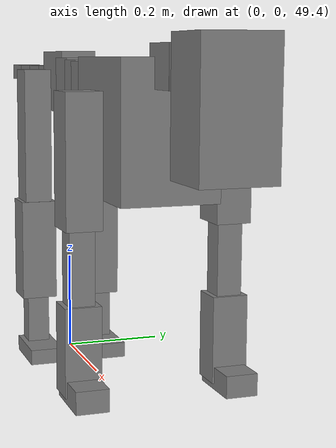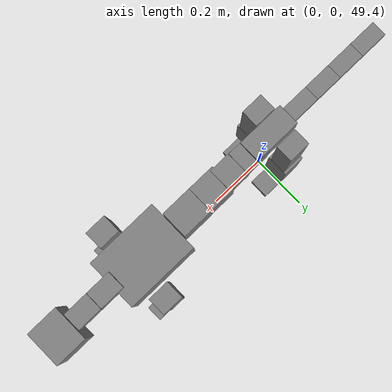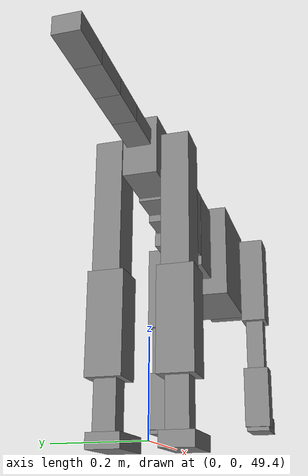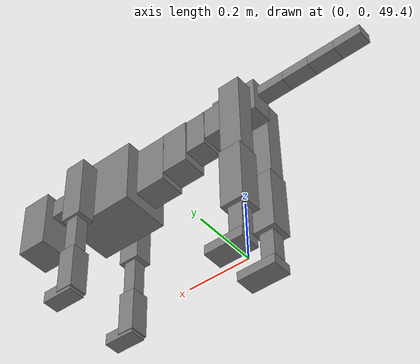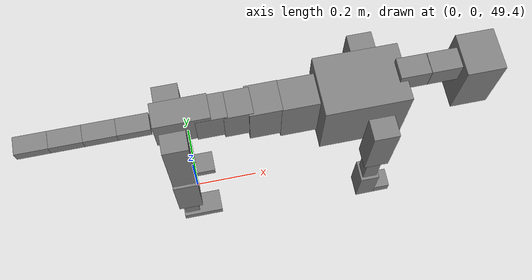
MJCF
<mujoco model="dog">

    <default>
        <joint armature="0.02" stiffness="1" damping="0.2" limited="true"/>
        <geom condim="3" friction="1 0.05 0.05" margin="0.01"/>
        <motor ctrllimited="true" ctrlrange="-1.0 1.0" forcelimited="true" gear="50"/>
    </default>

    <compiler inertiafromgeom="true" angle="radian"/>

    <option timestep="0.016" iterations="50" tolerance="1e-10" solver="Newton" jacobian="dense" cone="pyramidal"/>

    <size nconmax="20000" njmax="60000" nstack="5000000"/>
    <visual>
        <map force="0.1" zfar="30"/>
        <rgba haze="0.15 0.25 0.35 1"/>
        <quality shadowsize="2048"/>
        <global offwidth="800" offheight="800"/>
    </visual>

    <asset>
        <texture type="skybox" builtin="gradient" rgb1="0.3 0.5 0.7" rgb2="0 0 0" width="512" height="512"/>
        <texture name="texplane" type="2d" builtin="checker" rgb1=".2 .3 .4" rgb2=".1 0.15 0.2" width="512" height="512"
                 mark="cross" markrgb=".8 .8 .8"/>
        <texture name="texgeom" type="cube" builtin="flat" mark="cross" width="127" height="1278" rgb1="0.8 0.6 0.4"
                 rgb2="0.8 0.6 0.4" markrgb="1 1 1" random="0.01"/>

        <material name="matplane" reflectance="0.3" texture="texplane" texrepeat="1 1" texuniform="true"/>
        <material name="matgeom" texture="texgeom" texuniform="true" rgba="0.8 0.6 .4 1"/>
    </asset>

    <worldbody>
        <geom name="floor" pos="0 0 0" size="0 0 .25" type="plane" material="matplane" condim="3"/>

        <light directional="false" diffuse=".2 .2 .2" specular="0 0 0" pos="0 0 5" dir="0 0 -1" castshadow="false"/>
        <light mode="targetbodycom" target="torso" directional="false" diffuse=".8 .8 .8" specular="0.3 0.3 0.3"
               pos="0 0 4.0" dir="0 0 -1"/>

        <body name="root" pos="0 0 50">
            <freejoint name="root_1"/>
            <geom type="box" pos="0 0 -0.02" size="0.0774  0.0358  0.063" density="2030"/>

            <body name="spine1" pos="0.054 0 0">
                <joint name="spine1_y" axis="0 1 0" range="0 0.7" limited="true"/>
                <geom type="box" pos="0.02375 0 -0.03" size="0.04375  0.0375  0.05985" density="2030"/>

                <body name="spine2" pos="0.0612 0 0">
                    <joint name="spine2_y" axis="0 1 0" range="-0.15 0.15" limited="true"/>
                    <geom type="box" pos="0.03555  0  -0.04" size="0.04055  0.039  0.06615" density="2030"/>

                    <body name="spine3" pos="0.0730 0 0">
                        <joint name="spine3_y" axis="0 1 0" range="-0.15 0.15" limited="true"/>
                        <geom type="box" pos="0.03555  0  -0.057" size="0.04555  0.0445  0.081" density="2030"/>

                        <body name="spine4" pos="0.0780 0 0">
                            <joint name="spine4_y" axis="0 1 0" range="-0.15 0.15" limited="true"/>
                            <geom type="box" pos="0.05265  0  -0.07" size="0.05265  0.045  0.09135" density="2030"/>

                            <body name="torso" pos="0.1082 0 0">
                                <joint name="torso_y" axis="0 1 0" range="-0.15 0.15" limited="true"/>
                                <geom type="box" pos="0.11925  0  -0.085" size="0.11925  0.085  0.11745"
                                      density="2030"/>

                                <body name="neck1" pos="0.2160  0   0.0180">
                                    <joint name="neck1_y" axis="0 1 0" range="-1.2  -1" limited="true"/>
                                    <geom type="box" pos="0.0423  0  0" size="0.0423  0.03  0.036" density="2325"/>

                                    <body name="neck2" pos="0.0853  0  0">
                                        <joint name="neck2_y" axis="0 1 0" range="0.1  0" limited="true"/>
                                        <geom type="box" pos="0.0423  0  0" size="0.0423  0.03  0.036" density="2325"/>

                                        <body name="head" pos="0.0853  0  0">
                                            <joint name="head_y" axis="0 1 0" range="-0.3  -0.2" limited="true"/>
                                            <geom type="box" pos="0.0531  0  -0.055" size="0.0531  0.06  0.1044"
                                                  density="4030"/>

                                        </body>
                                    </body>
                                </body>

                                <body name="front_shoulder" pos="0.156  0   -0.0480">
                                    <joint name="front_shoulder_y" axis="0 1 0" range="-1 1.5" limited="true"/>
                                    <geom type="box" pos="0 0.13 -0.0852" size="0.0360  0.0308  0.1118" density="1158"/>
                                    <geom type="box" pos="0 -0.13 -0.0852" size="0.0360  0.0308  0.1118"
                                          density="1158"/>

                                    <body name="front_elbow" pos="0  0  -0.1704">
                                        <joint name="front_elbow_y" axis="0 1 0" range="-2 0" limited="true"/>
                                        <geom type="box" pos="0 0.13 -0.0829" size="0.0215  0.0220  0.0829"
                                              density="1081"/>
                                        <geom type="box" pos="0 -0.13 -0.0829" size="0.0215  0.0220  0.0829"
                                              density="1081"/>

                                        <body name="front_wrist" pos="0  0  -0.1657">
                                            <joint name="front_wrist_y" axis="0 1 0" range="-0.2 0" limited="true"/>
                                            <geom type="box" pos="0 0.13 -0.0622" size="0.0282  0.0313  0.0753"
                                                  density="1664"/>
                                            <geom type="box" pos="0 -0.13 -0.0622" size="0.0282  0.0313  0.0753"
                                                  density="1664"/>

                                            <body name="front_finger_end" pos="0  0  -0.1244">
                                                <joint name="front_finger_y" axis="0 1 0" range="-0.4 1"
                                                       limited="true"/>
                                                <geom type="box" pos="0.0282  0.13  -0.0043"
                                                      size="0.0518  0.0282  0.0193" density="1515"/>
                                                <geom type="box" pos="0.0282  -0.13  -0.0043"
                                                      size="0.0518  0.0282  0.0193" density="1515"/>

                                            </body>

                                        </body>
                                    </body>
                                </body>

                            </body>
                        </body>
                    </body>
                </body>
            </body>

            <body name="back_hip" pos="-0.03 0 -0.018">
                <joint name="back_hip_y" axis="0 1 0" range="-1.5 0.3" limited="true"/>
                <geom type="box" pos="0 0.07 -0.1371" size="0.0363  0.0285  0.1599" density="1154"/>
                <geom type="box" pos="0 -0.07 -0.1371" size="0.0363  0.0285  0.1599" density="1154"/>

                <body name="back_knee" pos="0  0  -0.2742">
                    <joint name="back_knee_y" axis="0 1 0" range="0 2.8" limited="true"/>
                    <geom type="box" pos="0 0.07 -0.0896" size="0.0374  0.0369  0.1052" density="1227"/>
                    <geom type="box" pos="0 -0.07 -0.0896" size="0.0374  0.0369  0.1052" density="1227"/>

                    <body name="back_ankle" pos="0  0  -0.1793">
                        <joint name="back_ankle_y" axis="0 1 0" range="-2.2 0" limited="true"/>
                        <geom type="box" pos="0 0.07 -0.0650" size="0.0229  0.0229  0.0762" density="1284"/>
                        <geom type="box" pos="0 -0.07 -0.0650" size="0.0229  0.0229  0.0762" density="1284"/>

                        <body name="back_toe_end" pos="0  0  -0.1300">
                            <joint name="back_toe_y" axis="0 1 0" range="-0.4 1" limited="true"/>
                            <geom type="box" pos="0.0342  0.07  -0.0007" size="0.0627  0.0342  0.0157" density="1515"/>
                            <geom type="box" pos="0.0342  -0.07  -0.0007" size="0.0627  0.0342  0.0157" density="1515"/>

                        </body>
                    </body>
                </body>
            </body>

            <body name="tail1" pos="-0.074 0 -0.006">
                <joint name="tail1_y" axis="0 1 0" range="-0.2 0.2" limited="true"/>
                <geom type="box" pos="-0.0536  0  0" size="0.045  0.025  0.0175" density="1587"/>

                <body name="tail2" pos="-0.09 0 0">
                    <joint name="tail2_y" axis="0 1 0" range="-0.2 0.2" limited="true"/>
                    <geom type="box" pos="-0.0536  0  0" size="0.045  0.025  0.0175" density="1587"/>

                    <body name="tail3" pos="-0.09 0 0">
                        <joint name="tail3_y" axis="0 1 0" range="-0.2 0.2" limited="true"/>
                        <geom type="box" pos="-0.0536  0  0" size="0.045  0.025  0.0175" density="1587"/>

                        <body name="tail4" pos="-0.09 0 0">
                            <joint name="tail4_y" axis="0 1 0" range="-0.2 0.2" limited="true"/>
                            <geom type="box" pos="-0.0536  0  0" size="0.045  0.025  0.0175" density="1587"/>

                        </body>
                    </body>
                </body>
            </body>
        </body>
    </worldbody>

    <actuator>
        <motor joint="spine1_y" forcerange="-150 150     "/>
        <motor joint="spine2_y" forcerange="-150 150     "/>
        <motor joint="spine3_y" forcerange="-150 150     "/>
        <motor joint="spine4_y" forcerange="-150 150     "/>
        <motor joint="torso_y" forcerange="-150 150     "/>
        <motor joint="neck1_y" forcerange="-100 100       "/>
        <motor joint="neck2_y" forcerange="-100 100       "/>
        <motor joint="head_y" forcerange="-150 150       "/>
        <motor joint="front_shoulder_y" forcerange="-194.22 110.88"/>
        <motor joint="front_elbow_y" forcerange="-126.00 134.12"/>
        <motor joint="front_wrist_y" forcerange="-104.83 145.74"/>
        <motor joint="front_finger_y" forcerange="-29.51 81.09"/>
        <motor joint="back_hip_y" forcerange="-253.98 325.47"/>
        <motor joint="back_knee_y" forcerange="-393.75 342.42"/>
        <motor joint="back_angle_y" forcerange="-214.04 51.71"/>
        <motor joint="back_toe_y" forcerange="-80.15 113.45"/>
        <motor joint="tail1_y" forcerange="-50 50     "/>
        <motor joint="tail2_y" forcerange="-50 50     "/>
        <motor joint="tail3_y" forcerange="-50 50     "/>
        <motor joint="tail4_y" forcerange="-50 50     "/>
    </actuator>
</mujoco>
